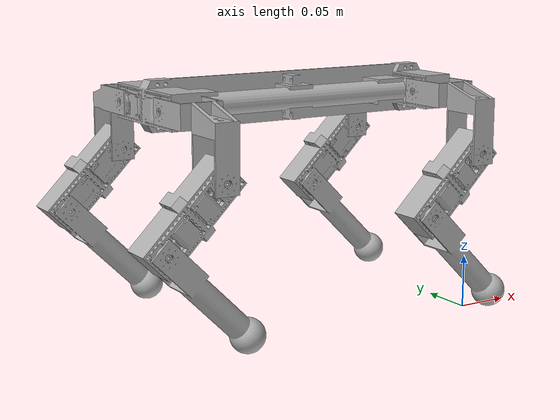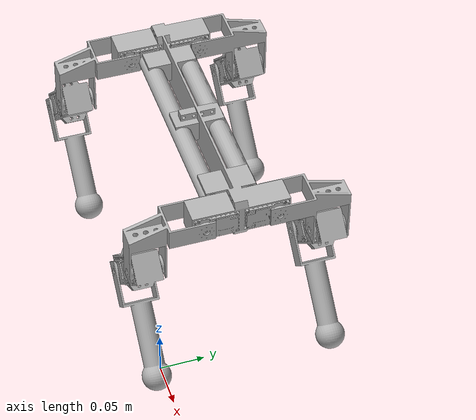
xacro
<?xml version="1.0" ?>
<robot name="zeta" xmlns:xacro="http://www.ros.org/wiki/xacro">

<xacro:include filename="$(find zeta_description)/urdf/materials.xacro" />
<xacro:include filename="$(find zeta_description)/urdf/zeta.trans" />

<xacro:include filename="$(find zeta_description)/gazebo/zeta_materials.gazebo" />
<xacro:include filename="$(find zeta_description)/gazebo/zeta_physics.gazebo" />
<xacro:include filename="$(find zeta_description)/gazebo/zeta_plugins.gazebo" />

<link name="base_link">
  <inertial>
    <origin rpy="0 0 0" xyz="-0.14461409332930716 0.0883518788335936 0.2064875843501072"/>
    <mass value="0.26109888559714134"/>
    <inertia ixx="0.000188" ixy="0.0" ixz="-0.0" iyy="0.003858" iyz="-0.0" izz="0.003995"/>
  </inertial>
  <visual>
    <origin rpy="0 0 0" xyz="0 0 0"/>
    <geometry>
      <mesh filename="package://zeta_description/meshes/base_link.stl" scale="0.001 0.001 0.001"/>
    </geometry>
    <material name="silver"/>
  </visual>
  <collision>
    <origin rpy="0 0 0" xyz="0 0 0"/>
    <geometry>
      <mesh filename="package://zeta_description/meshes/base_link.stl" scale="0.001 0.001 0.001"/>
    </geometry>
  </collision>
</link>

<link name="BL_foot_1">
  <inertial>
    <origin rpy="0 0 0" xyz="0.05644955069451385 -0.01619715461445445 -0.056449524198164465"/>
    <mass value="0.050254366168808934"/>
    <inertia ixx="4e-05" ixy="0.0" ixz="3.4e-05" iyy="7.1e-05" iyz="-0.0" izz="4e-05"/>
  </inertial>
  <visual>
    <origin rpy="0 0 0" xyz="0.333552 -0.203521 -0.100725"/>
    <geometry>
      <mesh filename="package://zeta_description/meshes/BL_foot_1.stl" scale="0.001 0.001 0.001"/>
    </geometry>
    <material name="silver"/>
  </visual>
  <collision>
    <origin rpy="0 0 0" xyz="0.333552 -0.203521 -0.100725"/>
    <geometry>
      <mesh filename="package://zeta_description/meshes/BL_foot_1.stl" scale="0.001 0.001 0.001"/>
    </geometry>
  </collision>
</link>

<link name="BL_motor_block_1">
  <inertial>
    <origin rpy="0 0 0" xyz="-0.027223152863659228 -0.014672109847305964 -0.02722359848924935"/>
    <mass value="0.08833659369300421"/>
    <inertia ixx="4.7e-05" ixy="-0.0" ixz="-3.2e-05" iyy="8e-05" iyz="0.0" izz="4.7e-05"/>
  </inertial>
  <visual>
    <origin rpy="0 0 0" xyz="0.279105 -0.203521 -0.155172"/>
    <geometry>
      <mesh filename="package://zeta_description/meshes/BL_motor_block_1.stl" scale="0.001 0.001 0.001"/>
    </geometry>
    <material name="silver"/>
  </visual>
  <collision>
    <origin rpy="0 0 0" xyz="0.279105 -0.203521 -0.155172"/>
    <geometry>
      <mesh filename="package://zeta_description/meshes/BL_motor_block_1.stl" scale="0.001 0.001 0.001"/>
    </geometry>
  </collision>
</link>

<link name="BL_top_1">
  <inertial>
    <origin rpy="0 0 0" xyz="0.016013586630673704 0.047570667286835455 -0.011363799013344889"/>
    <mass value="0.026371988478748627"/>
    <inertia ixx="2.3e-05" ixy="-0.0" ixz="0.0" iyy="1.1e-05" iyz="4e-06" izz="1.8e-05"/>
  </inertial>
  <visual>
    <origin rpy="0 0 0" xyz="0.295505 -0.128052 -0.206491"/>
    <geometry>
      <mesh filename="package://zeta_description/meshes/BL_top_1.stl" scale="0.001 0.001 0.001"/>
    </geometry>
    <material name="silver"/>
  </visual>
  <collision>
    <origin rpy="0 0 0" xyz="0.295505 -0.128052 -0.206491"/>
    <geometry>
      <mesh filename="package://zeta_description/meshes/BL_top_1.stl" scale="0.001 0.001 0.001"/>
    </geometry>
  </collision>
</link>

<link name="BR_foot_1">
  <inertial>
    <origin rpy="0 0 0" xyz="0.0564495506979143 0.016196912277002512 -0.05644952420106039"/>
    <mass value="0.050254366173962006"/>
    <inertia ixx="4e-05" ixy="-0.0" ixz="3.4e-05" iyy="7.1e-05" iyz="0.0" izz="4e-05"/>
  </inertial>
  <visual>
    <origin rpy="0 0 0" xyz="0.333552 0.026817 -0.100725"/>
    <geometry>
      <mesh filename="package://zeta_description/meshes/BR_foot_1.stl" scale="0.001 0.001 0.001"/>
    </geometry>
    <material name="silver"/>
  </visual>
  <collision>
    <origin rpy="0 0 0" xyz="0.333552 0.026817 -0.100725"/>
    <geometry>
      <mesh filename="package://zeta_description/meshes/BR_foot_1.stl" scale="0.001 0.001 0.001"/>
    </geometry>
  </collision>
</link>

<link name="BR_motor_block_1">
  <inertial>
    <origin rpy="0 0 0" xyz="-0.027223152862709155 0.014671867515031146 -0.02722359848963765"/>
    <mass value="0.08833659369327077"/>
    <inertia ixx="4.7e-05" ixy="-0.0" ixz="-3.2e-05" iyy="8e-05" iyz="0.0" izz="4.7e-05"/>
  </inertial>
  <visual>
    <origin rpy="0 0 0" xyz="0.279105 0.026817 -0.155172"/>
    <geometry>
      <mesh filename="package://zeta_description/meshes/BR_motor_block_1.stl" scale="0.001 0.001 0.001"/>
    </geometry>
    <material name="silver"/>
  </visual>
  <collision>
    <origin rpy="0 0 0" xyz="0.279105 0.026817 -0.155172"/>
    <geometry>
      <mesh filename="package://zeta_description/meshes/BR_motor_block_1.stl" scale="0.001 0.001 0.001"/>
    </geometry>
  </collision>
</link>

<link name="BR_top_1">
  <inertial>
    <origin rpy="0 0 0" xyz="0.016013586630497123 -0.04757090961961194 -0.011363799013237114"/>
    <mass value="0.026371988478739887"/>
    <inertia ixx="2.3e-05" ixy="0.0" ixz="0.0" iyy="1.1e-05" iyz="-4e-06" izz="1.8e-05"/>
  </inertial>
  <visual>
    <origin rpy="0 0 0" xyz="0.295505 -0.048652 -0.206491"/>
    <geometry>
      <mesh filename="package://zeta_description/meshes/BR_top_1.stl" scale="0.001 0.001 0.001"/>
    </geometry>
    <material name="silver"/>
  </visual>
  <collision>
    <origin rpy="0 0 0" xyz="0.295505 -0.048652 -0.206491"/>
    <geometry>
      <mesh filename="package://zeta_description/meshes/BR_top_1.stl" scale="0.001 0.001 0.001"/>
    </geometry>
  </collision>
</link>

<link name="FR_top_1">
  <inertial>
    <origin rpy="0 0 0" xyz="0.016013586630579342 -0.04757090961960731 -0.011363799013341308"/>
    <mass value="0.026371988478748786"/>
    <inertia ixx="2.3e-05" ixy="0.0" ixz="0.0" iyy="1.1e-05" iyz="-4e-06" izz="1.8e-05"/>
  </inertial>
  <visual>
    <origin rpy="0 0 0" xyz="0.024505 -0.048652 -0.206491"/>
    <geometry>
      <mesh filename="package://zeta_description/meshes/FR_top_1.stl" scale="0.001 0.001 0.001"/>
    </geometry>
    <material name="silver"/>
  </visual>
  <collision>
    <origin rpy="0 0 0" xyz="0.024505 -0.048652 -0.206491"/>
    <geometry>
      <mesh filename="package://zeta_description/meshes/FR_top_1.stl" scale="0.001 0.001 0.001"/>
    </geometry>
  </collision>
</link>

<link name="FL_foot_1">
  <inertial>
    <origin rpy="0 0 0" xyz="0.05644955069451409 -0.016197154614456588 -0.056449524198166345"/>
    <mass value="0.0502543661688089"/>
    <inertia ixx="4e-05" ixy="0.0" ixz="3.4e-05" iyy="7.1e-05" iyz="-0.0" izz="4e-05"/>
  </inertial>
  <visual>
    <origin rpy="0 0 0" xyz="0.062552 -0.203521 -0.100725"/>
    <geometry>
      <mesh filename="package://zeta_description/meshes/FL_foot_1.stl" scale="0.001 0.001 0.001"/>
    </geometry>
    <material name="silver"/>
  </visual>
  <collision>
    <origin rpy="0 0 0" xyz="0.062552 -0.203521 -0.100725"/>
    <geometry>
      <mesh filename="package://zeta_description/meshes/FL_foot_1.stl" scale="0.001 0.001 0.001"/>
    </geometry>
  </collision>
</link>

<link name="FL_motor_block_1">
  <inertial>
    <origin rpy="0 0 0" xyz="-0.02718553583877841 -0.014671926830458815 -0.027187005197919556"/>
    <mass value="0.08843072327026845"/>
    <inertia ixx="4.7e-05" ixy="-0.0" ixz="-3.2e-05" iyy="8.1e-05" iyz="-0.0" izz="4.7e-05"/>
  </inertial>
  <visual>
    <origin rpy="0 0 0" xyz="0.008105 -0.203521 -0.155172"/>
    <geometry>
      <mesh filename="package://zeta_description/meshes/FL_motor_block_1.stl" scale="0.001 0.001 0.001"/>
    </geometry>
    <material name="silver"/>
  </visual>
  <collision>
    <origin rpy="0 0 0" xyz="0.008105 -0.203521 -0.155172"/>
    <geometry>
      <mesh filename="package://zeta_description/meshes/FL_motor_block_1.stl" scale="0.001 0.001 0.001"/>
    </geometry>
  </collision>
</link>

<link name="FL_top_1">
  <inertial>
    <origin rpy="0 0 0" xyz="0.0160135866305811 0.04757066728683562 -0.011363799013343834"/>
    <mass value="0.02637198847874842"/>
    <inertia ixx="2.3e-05" ixy="-0.0" ixz="0.0" iyy="1.1e-05" iyz="4e-06" izz="1.8e-05"/>
  </inertial>
  <visual>
    <origin rpy="0 0 0" xyz="0.024505 -0.128052 -0.206491"/>
    <geometry>
      <mesh filename="package://zeta_description/meshes/FL_top_1.stl" scale="0.001 0.001 0.001"/>
    </geometry>
    <material name="silver"/>
  </visual>
  <collision>
    <origin rpy="0 0 0" xyz="0.024505 -0.128052 -0.206491"/>
    <geometry>
      <mesh filename="package://zeta_description/meshes/FL_top_1.stl" scale="0.001 0.001 0.001"/>
    </geometry>
  </collision>
</link>

<link name="R_Pipe_1">
  <inertial>
    <origin rpy="0 0 0" xyz="0.1149254583128192 -0.00019701609423813937 -3.9498945669791397e-08"/>
    <mass value="0.06072232848588734"/>
    <inertia ixx="5e-06" ixy="0.0" ixz="0.0" iyy="0.00027" iyz="-0.0" izz="0.00027"/>
  </inertial>
  <visual>
    <origin rpy="0 0 0" xyz="0.260605 -0.067967 -0.206491"/>
    <geometry>
      <mesh filename="package://zeta_description/meshes/R_Pipe_1.stl" scale="0.001 0.001 0.001"/>
    </geometry>
    <material name="silver"/>
  </visual>
  <collision>
    <origin rpy="0 0 0" xyz="0.260605 -0.067967 -0.206491"/>
    <geometry>
      <mesh filename="package://zeta_description/meshes/R_Pipe_1.stl" scale="0.001 0.001 0.001"/>
    </geometry>
  </collision>
</link>

<link name="L_Pipe_1">
  <inertial>
    <origin rpy="0 0 0" xyz="0.11492545831281933 0.00019677376152678339 -3.949894572530255e-08"/>
    <mass value="0.06072232848588743"/>
    <inertia ixx="5e-06" ixy="0.0" ixz="0.0" iyy="0.00027" iyz="-0.0" izz="0.00027"/>
  </inertial>
  <visual>
    <origin rpy="0 0 0" xyz="0.260605 -0.108737 -0.206491"/>
    <geometry>
      <mesh filename="package://zeta_description/meshes/L_Pipe_1.stl" scale="0.001 0.001 0.001"/>
    </geometry>
    <material name="silver"/>
  </visual>
  <collision>
    <origin rpy="0 0 0" xyz="0.260605 -0.108737 -0.206491"/>
    <geometry>
      <mesh filename="package://zeta_description/meshes/L_Pipe_1.stl" scale="0.001 0.001 0.001"/>
    </geometry>
  </collision>
</link>

<link name="FR_foot_1">
  <inertial>
    <origin rpy="0 0 0" xyz="0.05644955069791327 0.01619691227700047 -0.05644952420106501"/>
    <mass value="0.05025436617396211"/>
    <inertia ixx="4e-05" ixy="-0.0" ixz="3.4e-05" iyy="7.1e-05" iyz="0.0" izz="4e-05"/>
  </inertial>
  <visual>
    <origin rpy="0 0 0" xyz="0.062552 0.026817 -0.100725"/>
    <geometry>
      <mesh filename="package://zeta_description/meshes/FR_foot_1.stl" scale="0.001 0.001 0.001"/>
    </geometry>
    <material name="silver"/>
  </visual>
  <collision>
    <origin rpy="0 0 0" xyz="0.062552 0.026817 -0.100725"/>
    <geometry>
      <mesh filename="package://zeta_description/meshes/FR_foot_1.stl" scale="0.001 0.001 0.001"/>
    </geometry>
  </collision>
</link>

<link name="FR_motor_block_1">
  <inertial>
    <origin rpy="0 0 0" xyz="-0.027185535838667285 0.014671684498179257 -0.0271870051983098"/>
    <mass value="0.0884307232705417"/>
    <inertia ixx="4.7e-05" ixy="0.0" ixz="-3.2e-05" iyy="8.1e-05" iyz="0.0" izz="4.7e-05"/>
  </inertial>
  <visual>
    <origin rpy="0 0 0" xyz="0.008105 0.026817 -0.155172"/>
    <geometry>
      <mesh filename="package://zeta_description/meshes/FR_motor_block_1.stl" scale="0.001 0.001 0.001"/>
    </geometry>
    <material name="silver"/>
  </visual>
  <collision>
    <origin rpy="0 0 0" xyz="0.008105 0.026817 -0.155172"/>
    <geometry>
      <mesh filename="package://zeta_description/meshes/FR_motor_block_1.stl" scale="0.001 0.001 0.001"/>
    </geometry>
  </collision>
</link>

<joint name="Rev46" type="continuous">
  <origin rpy="0 0 0" xyz="-0.054447 0.0 -0.054447"/>
  <parent link="BL_motor_block_1"/>
  <child link="BL_foot_1"/>
  <axis xyz="0.0 1.0 -0.0"/>
</joint>

<joint name="Rev47" type="continuous">
  <origin rpy="0 0 0" xyz="0.0164 0.075469 -0.051319"/>
  <parent link="BL_top_1"/>
  <child link="BL_motor_block_1"/>
  <axis xyz="0.0 -1.0 0.0"/>
</joint>

<joint name="Rev48" type="continuous">
  <origin rpy="0 0 0" xyz="-0.295505 0.128052 0.206491"/>
  <parent link="base_link"/>
  <child link="BL_top_1"/>
  <axis xyz="1.0 -0.0 -0.0"/>
</joint>

<joint name="Rev49" type="continuous">
  <origin rpy="0 0 0" xyz="-0.054447 0.0 -0.054447"/>
  <parent link="BR_motor_block_1"/>
  <child link="BR_foot_1"/>
  <axis xyz="-0.0 -1.0 0.0"/>
</joint>

<joint name="Rev50" type="continuous">
  <origin rpy="0 0 0" xyz="0.0164 -0.075469 -0.051319"/>
  <parent link="BR_top_1"/>
  <child link="BR_motor_block_1"/>
  <axis xyz="-0.0 -1.0 0.0"/>
</joint>

<joint name="Rev51" type="continuous">
  <origin rpy="0 0 0" xyz="-0.295505 0.048652 0.206491"/>
  <parent link="base_link"/>
  <child link="BR_top_1"/>
  <axis xyz="-1.0 0.0 0.0"/>
</joint>

<joint name="Rev54" type="continuous">
  <origin rpy="0 0 0" xyz="-0.024505 0.048652 0.206491"/>
  <parent link="base_link"/>
  <child link="FR_top_1"/>
  <axis xyz="-1.0 0.0 0.0"/>
</joint>

<joint name="Rev55" type="continuous">
  <origin rpy="0 0 0" xyz="-0.054447 0.0 -0.054447"/>
  <parent link="FL_motor_block_1"/>
  <child link="FL_foot_1"/>
  <axis xyz="0.0 -1.0 -0.0"/>
</joint>

<joint name="Rev56" type="continuous">
  <origin rpy="0 0 0" xyz="0.0164 0.075469 -0.051319"/>
  <parent link="FL_top_1"/>
  <child link="FL_motor_block_1"/>
  <axis xyz="0.0 -1.0 0.0"/>
</joint>

<joint name="Rev57" type="continuous">
  <origin rpy="0 0 0" xyz="-0.024505 0.128052 0.206491"/>
  <parent link="base_link"/>
  <child link="FL_top_1"/>
  <axis xyz="1.0 -0.0 -0.0"/>
</joint>

<joint name="Rigid58" type="fixed">
  <origin rpy="0 0 0" xyz="-0.260605 0.067967 0.206491"/>
  <parent link="base_link"/>
  <child link="R_Pipe_1"/>
</joint>

<joint name="Rigid59" type="fixed">
  <origin rpy="0 0 0" xyz="-0.260605 0.108737 0.206491"/>
  <parent link="base_link"/>
  <child link="L_Pipe_1"/>
</joint>

<joint name="Rev61" type="continuous">
  <origin rpy="0 0 0" xyz="-0.054447 0.0 -0.054447"/>
  <parent link="FR_motor_block_1"/>
  <child link="FR_foot_1"/>
  <axis xyz="-0.0 -1.0 0.0"/>
</joint>

<joint name="Rev62" type="continuous">
  <origin rpy="0 0 0" xyz="0.0164 -0.075469 -0.051319"/>
  <parent link="FR_top_1"/>
  <child link="FR_motor_block_1"/>
  <axis xyz="-0.0 -1.0 0.0"/>
</joint>

</robot>

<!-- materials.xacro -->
<robot name="zeta" xmlns:xacro="http://www.ros.org/wiki/xacro" >

<material name="silver">
  <color rgba="0.700 0.700 0.700 1.000"/>
</material>

</robot>

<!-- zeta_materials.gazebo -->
<robot name="zeta" xmlns:xacro="http://www.ros.org/wiki/xacro" >

<xacro:property name="body_color" value="Gazebo/Black" />
<xacro:property name="pvc_color" value="Gazebo/While" />

<gazebo reference="base_link">
  <material>${body_color}</material>
</gazebo>

<gazebo reference="BL_foot_1">
  <material>${body_color}</material>
</gazebo>

<gazebo reference="BL_motor_block_1">
  <material>${body_color}</material>
</gazebo>

<gazebo reference="BL_top_1">
  <material>${body_color}</material>
</gazebo>

<gazebo reference="BR_foot_1">
  <material>${body_color}</material>
</gazebo>

<gazebo reference="BR_motor_block_1">
  <material>${body_color}</material>
</gazebo>

<gazebo reference="BR_top_1">
  <material>${body_color}</material>
</gazebo>

<gazebo reference="FR_top_1">
  <material>${body_color}</material>
</gazebo>

<gazebo reference="FL_foot_1">
  <material>${body_color}</material>
</gazebo>

<gazebo reference="FL_motor_block_1">
  <material>${body_color}</material>
</gazebo>

<gazebo reference="FL_top_1">
  <material>${body_color}</material>
  <mu1>0.2</mu1>
  <mu2>0.2</mu2>
  <selfCollide>true</selfCollide>
</gazebo>

<gazebo reference="R_Pipe_1">
  <material>${pvc_color}</material>
</gazebo>

<gazebo reference="L_Pipe_1">
  <material>${pvc_color}</material>
</gazebo>

<gazebo reference="FR_foot_1">
  <material>${body_color}</material>
</gazebo>

<gazebo reference="FR_motor_block_1">
  <material>${body_color}</material>
</gazebo>

</robot>
